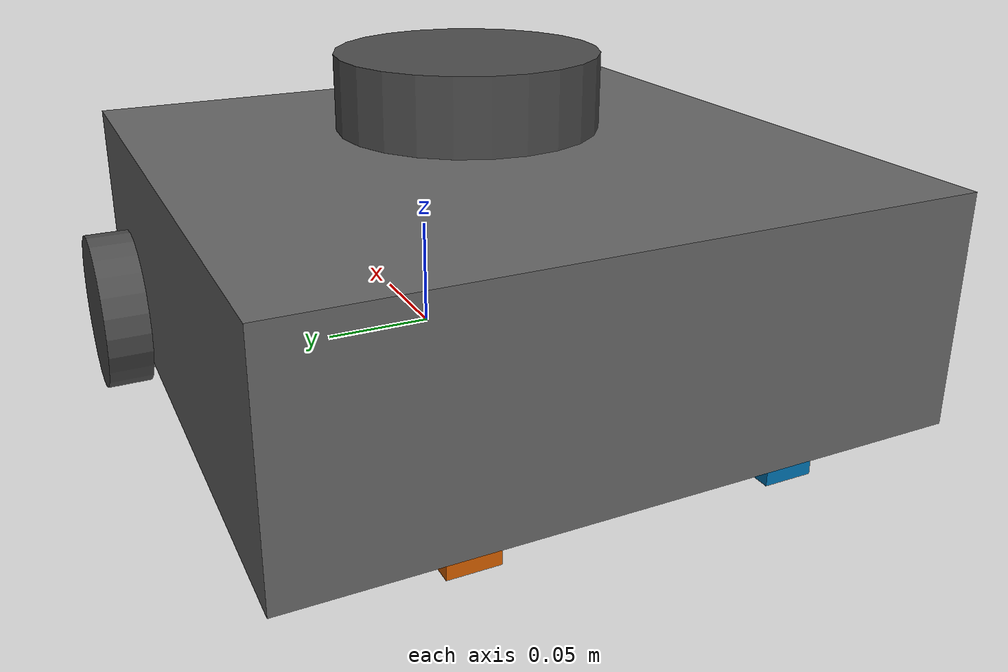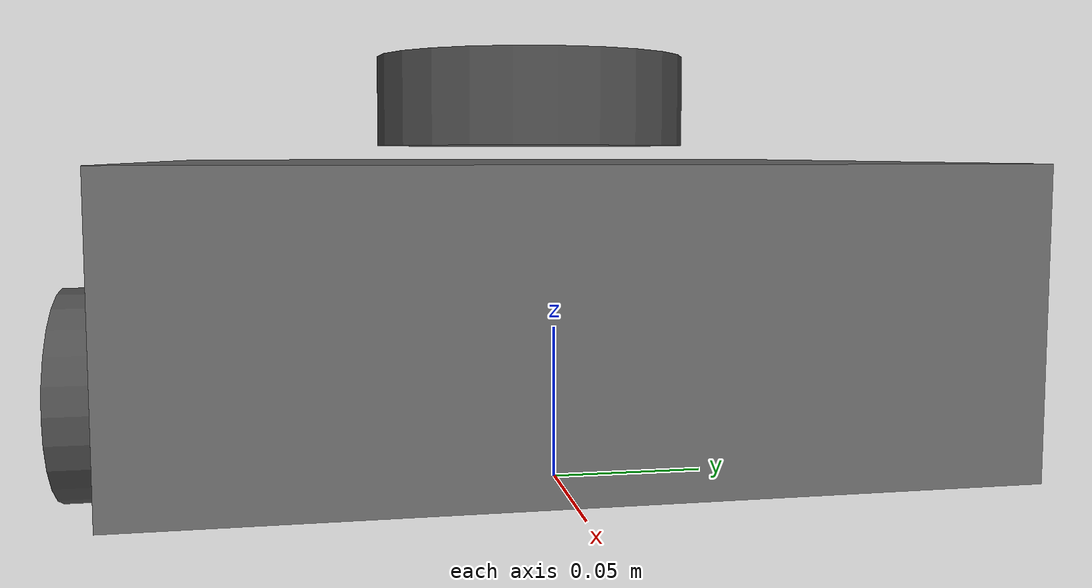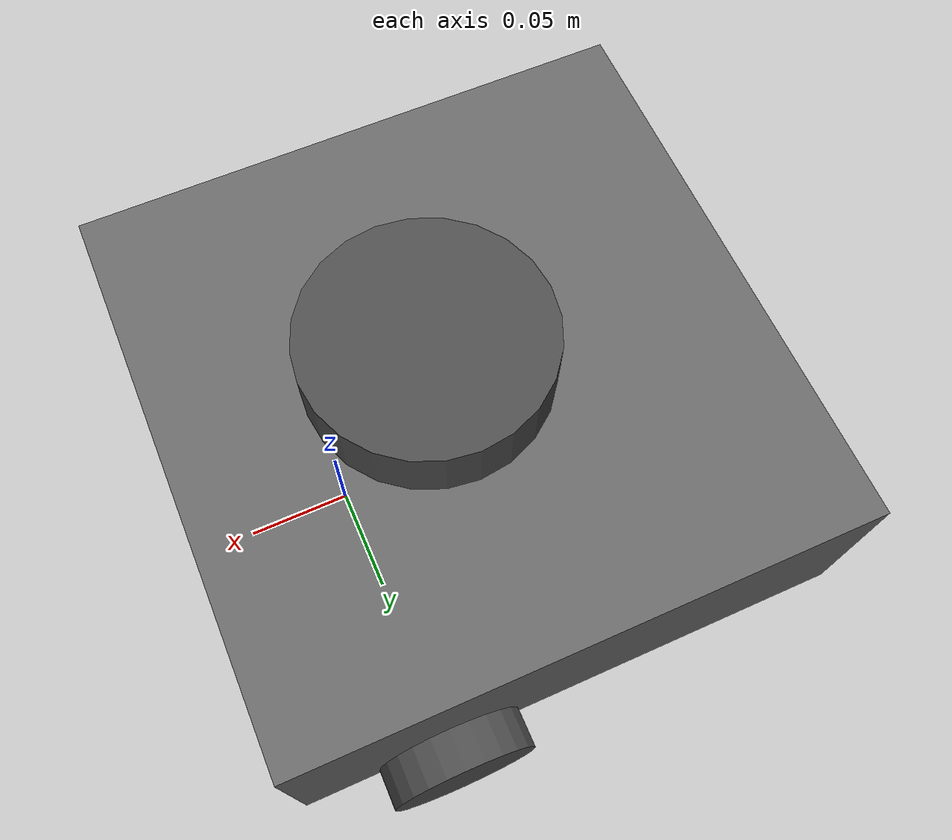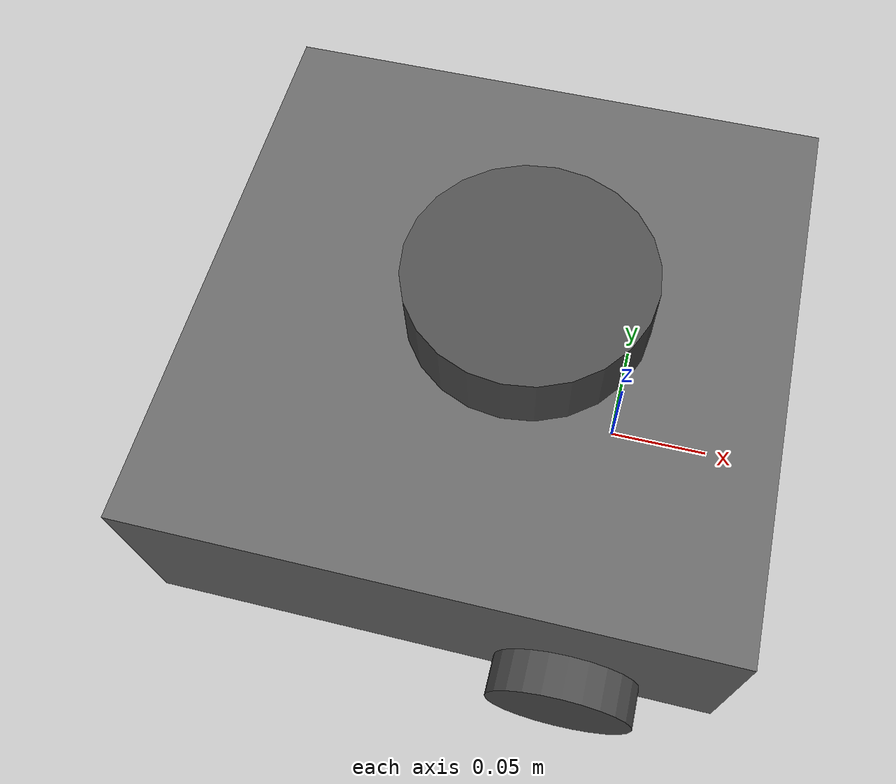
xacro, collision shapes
<?xml version="1.0" ?>
<robot name="turtlebot3_waffle" xmlns:xacro="http://ros.org/wiki/xacro">

  <xacro:arg name="prefix" default=""/>
  <xacro:arg name="namespace" default=""/>
  <xacro:arg name="lidar_range" default="6.0"/>

  <xacro:property name="prefix" value="$(arg prefix)"/>
  <xacro:property name="ns" value="$(arg namespace)"/>

  <material name="dark">        <color rgba="0.3 0.3 0.3 1.0"/></material>
  <material name="light_black"> <color rgba="0.4 0.4 0.4 1.0"/></material>

  <!-- ============================ LINKS ============================ -->
  <link name="base_footprint"/>

  <joint name="base_joint" type="fixed">
    <parent link="base_footprint"/>
    <child link="base_link"/>
    <origin xyz="0 0 0.010" rpy="0 0 0"/>
  </joint>

  <link name="base_link">
    <visual>
      <origin xyz="-0.064 0 0.0" rpy="0 0 0"/>
      <geometry>
        <mesh filename="package://turtlebot3_description/meshes/bases/waffle_base.stl" scale="0.001 0.001 0.001"/>
      </geometry>
      <material name="light_black"/>
    </visual>
    <collision>
      <origin xyz="-0.064 0 0.047" rpy="0 0 0"/>
      <geometry><box size="0.266 0.266 0.094"/></geometry>
    </collision>
    <inertial>
      <origin xyz="0 0 0" rpy="0 0 0"/>
      <mass value="1.3729096e+00"/>
      <inertia ixx="8.7002718e-03" ixy="-4.7576583e-05" ixz="1.1160499e-04"
               iyy="8.6195418e-03" iyz="-3.5422299e-06" izz="1.4612727e-02"/>
    </inertial>
  </link>

  <joint name="wheel_left_joint" type="continuous">
    <parent link="base_link"/>
    <child link="wheel_left_link"/>
    <origin xyz="0.0 0.144 0.023" rpy="-1.57 0 0"/>
    <axis xyz="0 0 1"/>
  </joint>

  <link name="wheel_left_link">
    <visual>
      <origin xyz="0 0 0" rpy="1.57 0 0"/>
      <geometry>
        <mesh filename="package://turtlebot3_description/meshes/wheels/left_tire.stl" scale="0.001 0.001 0.001"/>
      </geometry>
      <material name="dark"/>
    </visual>
    <collision>
      <origin xyz="0 0 0" rpy="0 0 0"/>
      <geometry><cylinder length="0.018" radius="0.033"/></geometry>
    </collision>
    <inertial>
      <origin xyz="0 0 0"/>
      <mass value="2.8498940e-02"/>
      <inertia ixx="1.1175580e-05" ixy="-4.2369783e-11" ixz="-5.9381719e-09"
               iyy="1.1192413e-05" iyz="-1.4400107e-11" izz="2.0712558e-05"/>
    </inertial>
  </link>

  <joint name="wheel_right_joint" type="continuous">
    <parent link="base_link"/>
    <child link="wheel_right_link"/>
    <origin xyz="0.0 -0.144 0.023" rpy="-1.57 0 0"/>
    <axis xyz="0 0 1"/>
  </joint>

  <link name="wheel_right_link">
    <visual>
      <origin xyz="0 0 0" rpy="1.57 0 0"/>
      <geometry>
        <mesh filename="package://turtlebot3_description/meshes/wheels/right_tire.stl" scale="0.001 0.001 0.001"/>
      </geometry>
      <material name="dark"/>
    </visual>
    <collision>
      <origin xyz="0 0 0" rpy="0 0 0"/>
      <geometry><cylinder length="0.018" radius="0.033"/></geometry>
    </collision>
    <inertial>
      <origin xyz="0 0 0"/>
      <mass value="2.8498940e-02"/>
      <inertia ixx="1.1175580e-05" ixy="-4.2369783e-11" ixz="-5.9381719e-09"
               iyy="1.1192413e-05" iyz="-1.4400107e-11" izz="2.0712558e-05"/>
    </inertial>
  </link>

  <joint name="caster_back_right_joint" type="fixed">
    <parent link="base_link"/>
    <child link="caster_back_right_link"/>
    <origin xyz="-0.177 -0.064 -0.004" rpy="-1.57 0 0"/>
  </joint>
  <link name="caster_back_right_link">
    <collision>
      <origin xyz="0 0.001 0" rpy="0 0 0"/>
      <geometry><box size="0.030 0.009 0.020"/></geometry>
    </collision>
    <inertial>
      <origin xyz="0 0 0"/><mass value="0.005"/>
      <inertia ixx="0.001" ixy="0.0" ixz="0.0" iyy="0.001" iyz="0.0" izz="0.001"/>
    </inertial>
  </link>

  <joint name="caster_back_left_joint" type="fixed">
    <parent link="base_link"/>
    <child link="caster_back_left_link"/>
    <origin xyz="-0.177 0.064 -0.004" rpy="-1.57 0 0"/>
  </joint>
  <link name="caster_back_left_link">
    <collision>
      <origin xyz="0 0.001 0" rpy="0 0 0"/>
      <geometry><box size="0.030 0.009 0.020"/></geometry>
    </collision>
    <inertial>
      <origin xyz="0 0 0"/><mass value="0.005"/>
      <inertia ixx="0.001" ixy="0.0" ixz="0.0" iyy="0.001" iyz="0.0" izz="0.001"/>
    </inertial>
  </link>

  <joint name="imu_joint" type="fixed">
    <parent link="base_link"/>
    <child link="imu_link"/>
    <origin xyz="0.0 0 0.068" rpy="0 0 0"/>
  </joint>
  <link name="imu_link"/>

  <joint name="scan_joint" type="fixed">
    <parent link="base_link"/>
    <child link="base_scan"/>
    <origin xyz="-0.064 0 0.122" rpy="0 0 0"/>
  </joint>

  <link name="base_scan">
    <visual>
      <origin xyz="0 0 0" rpy="0 0 0"/>
      <geometry>
        <mesh filename="package://turtlebot3_description/meshes/sensors/lds.stl" scale="0.001 0.001 0.001"/>
      </geometry>
      <material name="dark"/>
    </visual>
    <collision>
      <origin xyz="0.015 0 -0.0065" rpy="0 0 0"/>
      <geometry><cylinder length="0.0315" radius="0.055"/></geometry>
    </collision>
    <inertial>
      <mass value="0.114"/><origin xyz="0 0 0"/>
      <inertia ixx="0.001" ixy="0.0" ixz="0.0" iyy="0.001" iyz="0.0" izz="0.001"/>
    </inertial>
  </link>

  <!-- ============================ GAZEBO ============================ -->
  <gazebo reference="base_link">        <material>Gazebo/DarkGrey</material></gazebo>
  <gazebo reference="wheel_left_link">  <mu1>100000.0</mu1><mu2>100000.0</mu2><material>Gazebo/FlatBlack</material></gazebo>
  <gazebo reference="wheel_right_link"> <mu1>100000.0</mu1><mu2>100000.0</mu2><material>Gazebo/FlatBlack</material></gazebo>
  <gazebo reference="caster_back_right_link"><mu1>0.1</mu1><mu2>0.1</mu2><kp>1000000.0</kp><kd>100.0</kd></gazebo>
  <gazebo reference="caster_back_left_link"> <mu1>0.1</mu1><mu2>0.1</mu2><kp>1000000.0</kp><kd>100.0</kd></gazebo>
  <gazebo reference="base_scan">        <material>Gazebo/FlatBlack</material></gazebo>

  <!-- IMU -->
  <gazebo reference="imu_link">
    <sensor name="imu" type="imu">
      <always_on>true</always_on>
      <update_rate>50</update_rate>
      <plugin name="turtlebot3_imu" filename="libgazebo_ros_imu_sensor.so">
        <ros>
          <namespace>${ns}</namespace>
          <remapping>~/out:=imu</remapping>
        </ros>
        <frame_name>${prefix}imu_link</frame_name>
      </plugin>
    </sensor>
  </gazebo>

  <!-- 360 deg LiDAR -->
  <gazebo reference="base_scan">
    <sensor name="hls_lfcd_lds" type="ray">
      <always_on>true</always_on>
      <visualize>false</visualize>
      <pose>0 0 0 0 0 0</pose>
      <update_rate>8</update_rate>
      <ray>
        <scan>
          <horizontal>
            <samples>360</samples>
            <resolution>1.000000</resolution>
            <min_angle>0.000000</min_angle>
            <max_angle>6.280000</max_angle>
          </horizontal>
        </scan>
        <range>
          <min>0.120000</min>
          <max>$(arg lidar_range)</max>
          <resolution>0.015000</resolution>
        </range>
        <noise>
          <type>gaussian</type>
          <mean>0.0</mean>
          <stddev>0.01</stddev>
        </noise>
      </ray>
      <plugin name="turtlebot3_laserscan" filename="libgazebo_ros_ray_sensor.so">
        <ros>
          <namespace>${ns}</namespace>
          <remapping>~/out:=scan</remapping>
        </ros>
        <output_type>sensor_msgs/LaserScan</output_type>
        <frame_name>${prefix}base_scan</frame_name>
      </plugin>
    </sensor>
  </gazebo>

  <!-- Differential drive + wheel odometry -->
  <gazebo>
    <plugin name="turtlebot3_diff_drive" filename="libgazebo_ros_diff_drive.so">
      <ros>
        <namespace>${ns}</namespace>
      </ros>
      <update_rate>30</update_rate>
      <left_joint>wheel_left_joint</left_joint>
      <right_joint>wheel_right_joint</right_joint>
      <wheel_separation>0.287</wheel_separation>
      <wheel_diameter>0.066</wheel_diameter>
      <max_wheel_torque>20</max_wheel_torque>
      <max_wheel_acceleration>1.0</max_wheel_acceleration>
      <command_topic>cmd_vel</command_topic>
      <publish_odom>true</publish_odom>
      <publish_odom_tf>true</publish_odom_tf>
      <publish_wheel_tf>false</publish_wheel_tf>
      <odometry_topic>odom</odometry_topic>
      <odometry_frame>${prefix}odom</odometry_frame>
      <robot_base_frame>${prefix}base_footprint</robot_base_frame>
    </plugin>

    <plugin name="turtlebot3_joint_state" filename="libgazebo_ros_joint_state_publisher.so">
      <ros>
        <namespace>${ns}</namespace>
        <remapping>~/out:=joint_states</remapping>
      </ros>
      <update_rate>30</update_rate>
      <joint_name>wheel_left_joint</joint_name>
      <joint_name>wheel_right_joint</joint_name>
    </plugin>
  </gazebo>

</robot>
